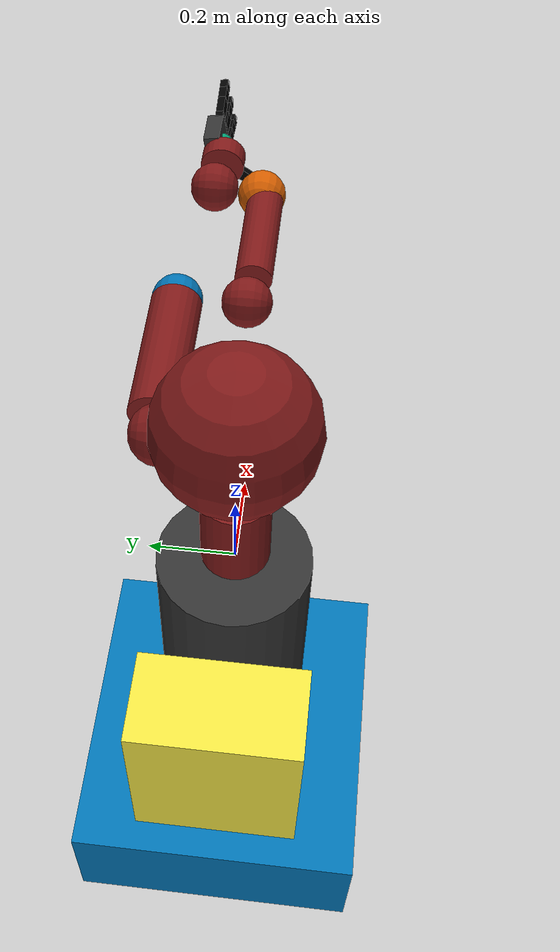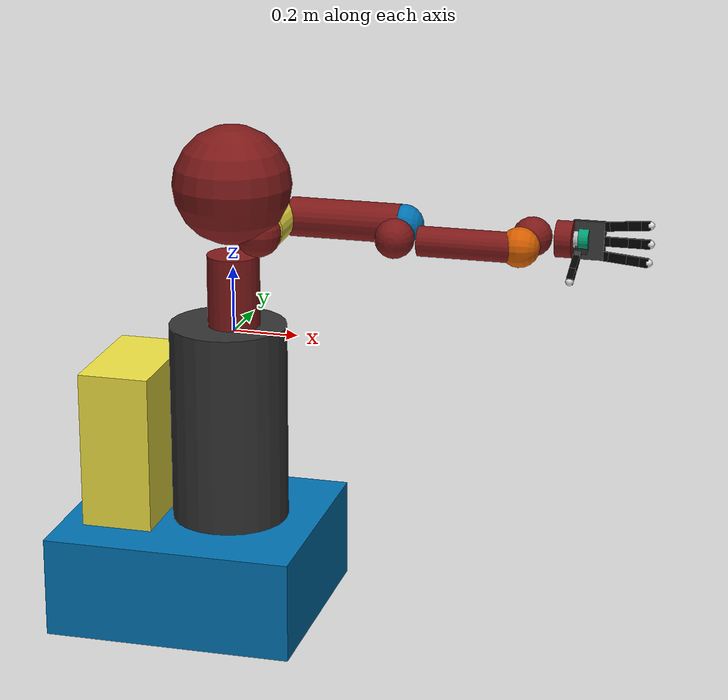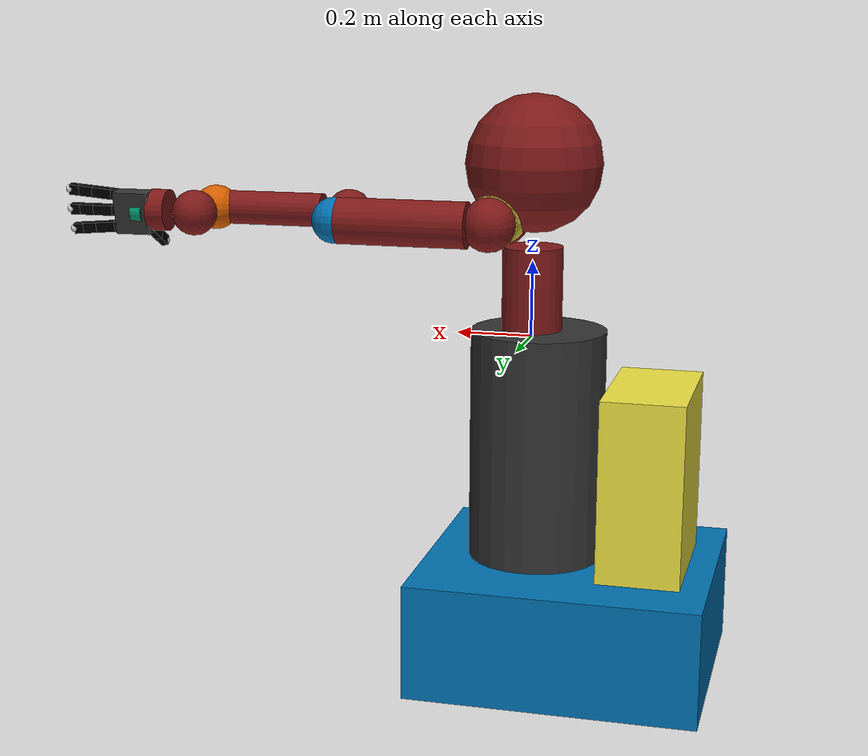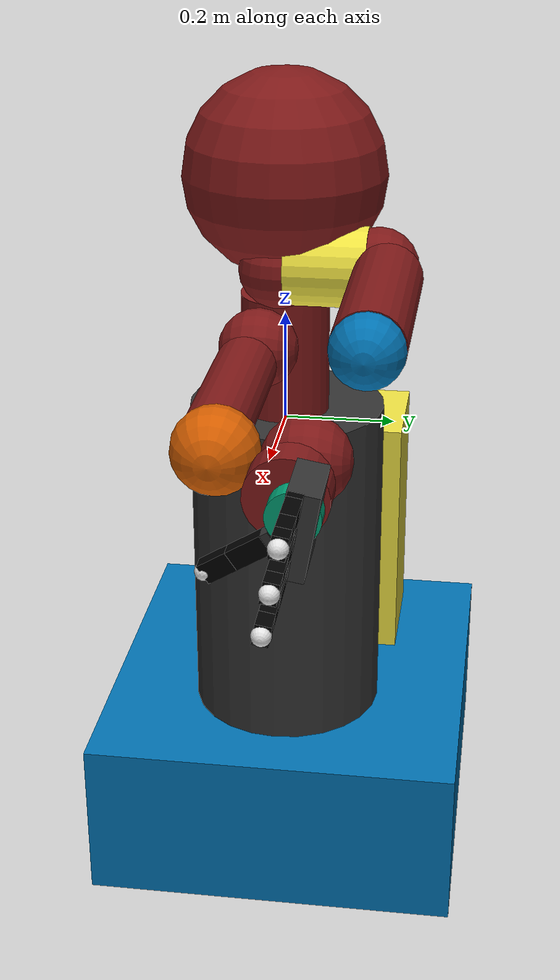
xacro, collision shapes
Our custom Xacro file. When you run the Xacro command on this file it
creates the combined URDF of Sawyer and the hand, and links them together including
the mount that we created.

<?xml version="1.0" ?>
<robot name="sawyer" xmlns:xacro="http://www.ros.org/wiki/xacro">

  <xacro:arg name="gazebo" default="false"/>
  <xacro:arg name="pedestal" default="true"/>
  <xacro:arg name="static" default="true"/>
  <xacro:arg name="electric_gripper" default="false"/>
  <xacro:arg name="allegro_hand" default="true"/>

  <!-- Sawyer Base URDF -->
  <xacro:include filename="$(find sawyer_description)/urdf/sawyer_base.urdf.xacro">
    <xacro:arg name="gazebo" value="${gazebo}"/>
    <xacro:arg name="pedestal" value="${pedestal}"/>
  </xacro:include>

  <xacro:if value="$(arg gazebo)">
  <xacro:include filename="$(find sawyer_description)/urdf/sawyer_base.gazebo.xacro">
    <xacro:arg name="static" value="${static}"/>
    <xacro:arg name="pedestal" value="${pedestal}"/>
  </xacro:include>
  </xacro:if>

  <!-- Electric Gripper End Effector -->
  <xacro:if value="$(arg electric_gripper)">
  <xacro:include filename="$(find sawyer_description)/urdf/sawyer_electric_gripper.urdf.xacro">
    <xacro:arg name="gazebo" value="${gazebo}"/>
  </xacro:include>
  </xacro:if>

  <!-- Allegro Hand End Effector -->
  <xacro:if value="$(arg allegro_hand)">
  <xacro:include filename="$(find allegro_hand_description)/allegro_hand_description_right.xacro">
    <xacro:arg name="gazebo" value="${gazebo}"/>
  </xacro:include>
  </xacro:if>

  <!-- The link that joins the end of the Sawyer to the mount -->
  <joint name="sawyer_to_mount" type="fixed">
    <parent link="right_hand"/>
    <child link="mount"/>
    <origin rpy="0 0 0" xyz="0 0 0"/>
  </joint>

<!-- The link between the mount and the hand -->
  <joint name="mount_to_hand" type="fixed">
    <parent link="mount"/>
    <child link="palm_link"/>
    <origin rpy="0 0 0" xyz="0 0 0.08"/>
  </joint>

<!-- The details of the custom mount we made, including its mass, dimensions and inertia matrix -->
  <link name="mount">
    <visual>
      <origin rpy="0 0 0" xyz="0 0 0"/>
      <geometry>
        <cylinder length="0.025" radius="0.0275"/>
      </geometry>
      <material name="silver"/>
    </visual>
    <collision>
      <origin rpy="0 0 0" xyz="0 0 0"/>
      <geometry>
        <cylinder length="0.025" radius="0.0275"/>
      </geometry>
    </collision>
    <inertial>
      <origin rpy="0 0 0" xyz="0 0 0"/>
      <mass value="0.16"/>
      <inertia ixx= "3.9e-5" ixy = "0" ixz="0" iyy="3.9e-5" iyz="0" izz="5e-5"/>
    </inertial>
  </link>

</robot>

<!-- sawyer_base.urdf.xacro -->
<robot name="sawyer" xmlns:xacro="http://www.ros.org/wiki/xacro">
  <xacro:arg name="gazebo" default="false"/>
  <xacro:arg name="pedestal" default="true"/>
  <material name="black">
    <color rgba="0 0 0 1"/>
  </material>
  <material name="darkgray">
    <color rgba=".2 .2 .2 1"/>
  </material>
  <material name="darkred">
    <color rgba=".5 .1 .1 1"/>
  </material>
  <material name="sawyer_red">
    <color rgba=".5 .1 .1 1"/>
  </material>
  <material name="sawyer_gray">
    <color rgba="0.75294 0.75294 0.75294 1"/>
  </material>
  <link name="base"/>
  <link name="torso">
    <visual>
      <origin rpy="0 0 0" xyz="0 0 0"/>
      <geometry>
        <box size="0.001 0.001 0.001"/>
      </geometry>
      <material name="darkgray">
        <color rgba=".2 .2 .2 1"/>
      </material>
    </visual>
<xacro:unless value="$(arg gazebo)">
    <inertial>
      <origin rpy="0 0 0" xyz="0.000000 0.000000 0.000000"/>
      <mass value="0.0001"/>
      <inertia ixx="1e-08" ixy="0" ixz="0" iyy="1e-08" iyz="0" izz="1e-08"/>
    </inertial>
</xacro:unless>
  </link>
<xacro:if value="$(arg pedestal)">
  <link name="pedestal">
    <visual>
      <origin rpy="1.57079632679 0 -1.57079632679" xyz="0.26 0.345 -0.91488"/>
      <geometry>
        <mesh filename="package://sawyer_description/meshes/sawyer_pv/pedestal.DAE"/>
      </geometry>
      <material name="darkgray"/>
    </visual>
    <collision>
      <origin rpy="0 0 0" xyz="-0.02 0 -0.29"/>
      <geometry>
        <cylinder length="0.62" radius="0.18"/>
      </geometry>
    </collision>
    <inertial>
      <origin rpy="0 0 0" xyz="0 0 -0.5"/>
      <mass value="60.86397744"/>
      <inertia ixx="5.0635929" ixy="0.00103417" ixz="0.80199628" iyy="6.08689388" iyz="0.00105311" izz="4.96191932"/>
    </inertial>
  </link>
  <link name="controller_box">
    <collision>
      <origin rpy="0 0 0" xyz="-0.325 0 -0.38"/>
      <geometry>
        <box size="0.22 0.4 0.53"/>
      </geometry>
    </collision>
  </link>
  <joint name="controller_box_fixed" type="fixed">
    <origin rpy="0 0 0" xyz="0.0 0.0 0.0"/>
    <parent link="base"/>
    <child link="controller_box"/>
  </joint>
  <link name="pedestal_feet">
    <collision>
      <origin rpy="0 0 0" xyz="-0.1225 0 -0.758"/>
      <geometry>
        <box size="0.77 0.7 0.31"/>
      </geometry>
    </collision>
  </link>
  <joint name="pedestal_feet_fixed" type="fixed">
    <origin rpy="0 0 0" xyz="0.0 0.0 0.0"/>
    <parent link="base"/>
    <child link="pedestal_feet"/>
  </joint>
  <joint name="pedestal_fixed" type="fixed">
    <origin rpy="0 0 0" xyz="0.0 0.0 0.0"/>
    <parent link="base"/>
    <child link="pedestal"/>
  </joint>
</xacro:if>
  <joint name="right_arm_mount" type="fixed">
    <origin rpy="0 0 0" xyz="0.0 0.0 0.0"/>
    <parent link="base"/>
    <child link="right_arm_base_link"/>
  </joint>
  <joint name="torso_t0" type="fixed">
    <origin rpy="0 0 0" xyz="0 0 0"/>
    <parent link="base"/>
    <child link="torso"/>
  </joint>
  <link name="right_arm_base_link">
    <inertial>
      <origin rpy="0 0 0" xyz="-0.0006241 -2.8025E-05 0.065404"/>
      <mass value="2.0687"/>
      <inertia ixx="0.0067599" ixy="-4.2024E-05" ixz="-6.1904E-07" iyy="0.0067877" iyz="1.5888E-05" izz="0.0074031"/>
    </inertial>
    <visual>
      <origin rpy="0 0 0" xyz="0 0 0"/>
      <geometry>
        <mesh filename="package://sawyer_description/meshes/sawyer_pv/base.DAE"/>
      </geometry>
      <material name="sawyer_red"/>
    </visual>
    <collision>
      <origin rpy="0 0 0" xyz="0 0 0.12"/>
      <geometry>
        <cylinder length="0.24" radius="0.08"/>
      </geometry>
    </collision>
  </link>
  <link name="right_l0">
    <inertial>
      <origin rpy="0 0 0" xyz="0.024366 0.010969 0.14363"/>
      <mass value="5.3213"/>
      <inertia ixx="0.053314" ixy="0.0047093" ixz="0.011734" iyy="0.057902" iyz="0.0080179" izz="0.023659"/>
    </inertial>
    <visual>
      <origin rpy="0 0 0" xyz="0 0 0"/>
      <geometry>
        <mesh filename="package://sawyer_description/meshes/sawyer_mp3/l0.DAE"/>
      </geometry>
      <material name="sawyer_red"/>
    </visual>
    <collision>
      <origin rpy="0 0 0" xyz="0.08 0 0.23"/>
      <geometry>
        <sphere radius="0.07"/>
      </geometry>
    </collision>
  </link>
  <joint name="right_j0" type="revolute">
    <origin rpy="0 0 0" xyz="0 0 0.08"/>
    <parent link="right_arm_base_link"/>
    <child link="right_l0"/>
    <axis xyz="0 0 1"/>
    <limit effort="80.0" lower="-3.0503" upper="3.0503" velocity="1.74"/>
<xacro:if value="$(arg gazebo)">
    <dynamics damping="5.0" friction="2.0"/>
</xacro:if>
  </joint>
  <link name="head">
    <inertial>
      <origin rpy="0 0 0" xyz="0.0053207 -2.6549E-05 0.1021"/>
      <mass value="1.5795"/>
      <inertia ixx="0.011833" ixy="-4.4669E-06" ixz="4.9425E-05" iyy="0.0082709" iyz="4.2124E-07" izz="0.0049661"/>
    </inertial>
    <visual>
      <origin rpy="0 0 0" xyz="0 0 0"/>
      <geometry>
        <mesh filename="package://sawyer_description/meshes/sawyer_pv/head.DAE"/>
      </geometry>
      <material name="sawyer_red"/>
    </visual>
    <collision>
      <origin rpy="0 0 0" xyz="0 0 0.08"/>
      <geometry>
        <sphere radius="0.18"/>
      </geometry>
    </collision>
  </link>
  <joint name="head_pan" type="revolute">
    <origin rpy="0 0 0" xyz="0 0 0.2965"/>
    <parent link="right_l0"/>
    <child link="head"/>
    <axis xyz="0 0 1"/>
    <limit effort="8" lower="-5.0952" upper="0.9064" velocity="1.8"/>
<xacro:if value="$(arg gazebo)">
    <dynamics damping="1.0" friction="0.5"/>
</xacro:if>
  </joint>
  <link name="right_torso_itb">
<xacro:unless value="$(arg gazebo)">
    <inertial>
      <origin rpy="0 0 0" xyz="0.000000 0.000000 0.000000"/>
      <mass value="0.0001"/>
      <inertia ixx="1e-08" ixy="0" ixz="0" iyy="1e-08" iyz="0" izz="1e-08"/>
    </inertial>
</xacro:unless>
  </link>
  <joint name="right_torso_itb" type="fixed">
    <origin rpy="0 -1.57079632679 0" xyz="-.055 0 .22"/>
    <parent link="right_l0"/>
    <child link="right_torso_itb"/>
    <axis xyz="0 0 1"/>
  </joint>
  <link name="right_l1">
    <inertial>
      <origin rpy="0 0 0" xyz="-0.0030849 -0.026811 0.092521"/>
      <mass value="4.505"/>
      <inertia ixx="0.022398" ixy="-0.00023986" ixz="-0.00029362" iyy="0.014613" iyz="-0.0060875" izz="0.017295"/>
    </inertial>
    <visual>
      <origin rpy="0 0 0" xyz="0 0 0"/>
      <geometry>
        <mesh filename="package://sawyer_description/meshes/sawyer_mp3/l1.DAE"/>
      </geometry>
      <material name="sawyer_red"/>
    </visual>
    <collision>
      <origin rpy="0 0 0" xyz="0 0 0.1225"/>
      <geometry>
        <sphere radius="0.07"/>
      </geometry>
    </collision>
  </link>
  <joint name="right_j1" type="revolute">
    <origin rpy="-1.57079632679 1.57079632679 0" xyz="0.081 0.05 0.237"/>
    <parent link="right_l0"/>
    <child link="right_l1"/>
    <axis xyz="0 0 1"/>
    <limit effort="80.0" lower="-3.8095" upper="2.2736" velocity="1.328"/>
<xacro:if value="$(arg gazebo)">
    <dynamics damping="5.0" friction="2.0"/>
</xacro:if>
  </joint>
  <link name="right_l2">
    <inertial>
      <origin rpy="0 0 0" xyz="-0.00016044 -0.014967 0.13582"/>
      <mass value="1.745"/>
      <inertia ixx="0.025506" ixy="4.4101E-06" ixz="1.4955E-05" iyy="0.0253" iyz="-0.0033204" izz="0.0034179"/>
    </inertial>
    <visual>
      <origin rpy="0 0 0" xyz="0 0 0"/>
      <geometry>
        <mesh filename="package://sawyer_description/meshes/sawyer_pv/l2.DAE"/>
      </geometry>
      <material name="sawyer_red"/>
    </visual>
    <collision>
      <origin rpy="0 0 0" xyz="0 0 0.08"/>
      <geometry>
        <cylinder length="0.34" radius="0.06"/>
      </geometry>
    </collision>
  </link>
  <joint name="right_j2" type="revolute">
    <origin rpy="1.57079632679 0 0" xyz="0 -0.14 0.1425"/>
    <parent link="right_l1"/>
    <child link="right_l2"/>
    <axis xyz="0 0 1"/>
    <limit effort="40.0" lower="-3.0426" upper="3.0426" velocity="1.957"/>
<xacro:if value="$(arg gazebo)">
    <dynamics damping="5.0" friction="2.0"/>
</xacro:if>
  </joint>
  <link name="right_l3">
    <inertial>
      <origin rpy="0 0 0" xyz="-0.0048135 -0.0281 -0.084154"/>
      <mass value="2.5097"/>
      <inertia ixx="0.01016" ixy="-9.7452E-06" ixz="0.00026624" iyy="0.0065685" iyz="0.0030316" izz="0.0069078"/>
    </inertial>
    <visual>
      <origin rpy="0 0 0" xyz="0 0 0"/>
      <geometry>
        <mesh filename="package://sawyer_description/meshes/sawyer_pv/l3.DAE"/>
      </geometry>
      <material name="sawyer_red"/>
    </visual>
    <collision>
      <origin rpy="0 0 0" xyz="0 -0.01 -0.12"/>
      <geometry>
        <sphere radius="0.06"/>
      </geometry>
    </collision>
  </link>
  <joint name="right_j3" type="revolute">
    <origin rpy="-1.57079632679 0 0" xyz="0 -0.042 0.26"/>
    <parent link="right_l2"/>
    <child link="right_l3"/>
    <axis xyz="0 0 1"/>
    <limit effort="40.0" lower="-3.0439" upper="3.0439" velocity="1.957"/>
 <xacro:if value="$(arg gazebo)">
    <dynamics damping="1.0" friction="0.5"/>
</xacro:if>
  </joint>
  <link name="right_l4">
    <inertial>
      <origin rpy="0 0 0" xyz="-0.0018844 0.0069001 0.1341"/>
      <mass value="1.1136"/>
      <inertia ixx="0.013557" ixy="1.8109E-05" ixz="0.00013523" iyy="0.013555" iyz="0.0010561" izz="0.0013658"/>
    </inertial>
    <visual>
      <origin rpy="0 0 0" xyz="0 0 0"/>
      <geometry>
        <mesh filename="package://sawyer_description/meshes/sawyer_pv/l4.DAE"/>
      </geometry>
      <material name="sawyer_red"/>
    </visual>
    <collision>
      <origin rpy="0 0 0" xyz="0 0 0.11"/>
      <geometry>
        <cylinder length="0.30" radius="0.045"/>
      </geometry>
    </collision>
  </link>
  <joint name="right_j4" type="revolute">
    <origin rpy="1.57079632679 0 0" xyz="0 -0.125 -0.1265"/>
    <parent link="right_l3"/>
    <child link="right_l4"/>
    <axis xyz="0 0 1"/>
    <limit effort="9.0" lower="-2.9761" upper="2.9761" velocity="3.485"/>
<xacro:if value="$(arg gazebo)">
    <dynamics damping="2.0" friction="1.0"/>
</xacro:if>
  </joint>
  <link name="right_arm_itb">
<xacro:unless value="$(arg gazebo)">
    <inertial>
      <origin rpy="0 0 0" xyz="0.000000 0.000000 0.000000"/>
      <mass value="0.0001"/>
      <inertia ixx="1e-08" ixy="0" ixz="0" iyy="1e-08" iyz="0" izz="1e-08"/>
    </inertial>
</xacro:unless>
  </link>
  <joint name="right_arm_itb" type="fixed">
    <origin rpy="0 -1.57079632679 0" xyz="-.055 0 .075"/>
    <parent link="right_l4"/>
    <child link="right_arm_itb"/>
    <axis xyz="0 0 1"/>
  </joint>
  <link name="right_l5">
    <inertial>
      <origin rpy="0 0 0" xyz="0.0061133 -0.023697 0.076416"/>
      <mass value="1.5625"/>
      <inertia ixx="0.0047328" ixy="0.00011526" ixz="4.6269E-05" iyy="0.0029676" iyz="-0.0011557" izz="0.0031762"/>
    </inertial>
    <visual>
      <origin rpy="0 0 0" xyz="0 0 0"/>
      <geometry>
        <mesh filename="package://sawyer_description/meshes/sawyer_pv/l5.DAE"/>
      </geometry>
      <material name="sawyer_red"/>
    </visual>
    <collision>
      <origin rpy="0 0 0" xyz="0 0 0.1"/>
      <geometry>
        <sphere radius="0.06"/>
      </geometry>
    </collision>
  </link>
  <joint name="right_j5" type="revolute">
    <origin rpy="-1.57079632679 0 0" xyz="0 0.031 0.275"/>
    <parent link="right_l4"/>
    <child link="right_l5"/>
    <axis xyz="0 0 1"/>
    <limit effort="9.0" lower="-2.9761" upper="2.9761" velocity="3.485"/>
<xacro:if value="$(arg gazebo)">
    <dynamics damping="1.0" friction="0.5"/>
</xacro:if>
  </joint>
  <link name="right_hand_camera"/>
  <joint name="right_hand_camera" type="fixed">
    <origin rpy="0 1.57079632679 0" xyz="0.039552 -0.033 0.0695"/>
    <parent link="right_l5"/>
    <child link="right_hand_camera"/>
    <axis xyz="0 0 0"/>
  </joint>
  <link name="right_wrist"/>
  <joint name="right_wrist" type="fixed">
    <origin rpy="1.57079632679 0 0" xyz="0 0 0.10541"/>
    <parent link="right_l5"/>
    <child link="right_wrist"/>
    <axis xyz="0 0 0"/>
  </joint>
  <link name="right_l6">
    <inertial>
      <origin rpy="0 0 0" xyz="-8.0726E-06 0.0085838 -0.0049566"/>
      <mass value="0.3292"/>
      <inertia ixx="0.00031105" ixy="1.4771E-06" ixz="-3.7074E-07" iyy="0.00021549" iyz="-8.4533E-06" izz="0.00035976"/>
    </inertial>
    <visual>
      <origin rpy="0 0 0" xyz="0 0 0"/>
      <geometry>
        <mesh filename="package://sawyer_description/meshes/sawyer_mp1/l6.DAE"/>
      </geometry>
      <material name="sawyer_red"/>
    </visual>
    <collision>
      <origin rpy="0 0 0" xyz="0 0.015 -0.01"/>
      <geometry>
        <cylinder length="0.05" radius="0.055"/>
      </geometry>
    </collision>
  </link>
  <joint name="right_j6" type="revolute">
    <origin rpy="-1.57079632679 -0.17453 3.1416" xyz="0 -0.11 0.1053"/>
    <parent link="right_l5"/>
    <child link="right_l6"/>
    <axis xyz="0 0 1"/>
<xacro:if value="$(arg gazebo)">
    <limit effort="9.0" lower="-3.14" upper="3.14" velocity="4.545"/>
    <dynamics damping="1.0" friction="0.5"/>
</xacro:if>
<xacro:unless value="$(arg gazebo)">
    <limit effort="9.0" lower="-4.7124" upper="4.7124" velocity="4.545"/>
</xacro:unless>
  </joint>
  <link name="right_hand">
    <collision>
      <origin rpy="0 0 0" xyz="0 0 0.02"/>
      <geometry>
        <cylinder length="0.03" radius="0.035"/>
      </geometry>
    </collision>
<xacro:if value="$(arg gazebo)">
    <inertial>
      <origin rpy="0 0 0" xyz="0 0.1 0"/>
      <mass value="0.01"/>
      <inertia ixx="0.01" ixy="0.01" ixz="0.01" iyy="0.01" iyz="0.01" izz="0.01"/>
  </inertial>
</xacro:if>
<xacro:unless value="$(arg gazebo)">
    <inertial>
      <origin rpy="0 0 0" xyz="1.0E-08 1.0E-08 1.0E-08"/>
      <mass value="1.0E-08"/>
      <inertia ixx="1.0E-08" ixy="1.0E-08" ixz="1.0E-08" iyy="1.0E-08" iyz="1.0E-08" izz="1.0E-08"/>
    </inertial>
</xacro:unless>
  </link>
  <joint name="right_hand" type="fixed">
    <origin rpy="0 0 1.570796" xyz="0 0 0.0245"/>
    <axis xyz="0 0 1"/>
    <parent link="right_l6"/>
    <child link="right_hand"/>
  </joint>
  <link name="right_l1_2">
<xacro:unless value="$(arg gazebo)">
    <inertial>
      <origin rpy="0 0 0" xyz="1.0E-08 1.0E-08 1.0E-08"/>
      <mass value="1.0E-08"/>
      <inertia ixx="1.0E-08" ixy="1.0E-08" ixz="1.0E-08" iyy="1.0E-08" iyz="1.0E-08" izz="1.0E-08"/>
    </inertial>
</xacro:unless>
    <collision>
      <origin rpy="0 0 0" xyz="0 0 0.035"/>
      <geometry>
        <cylinder length="0.14" radius="0.07"/>
      </geometry>
    </collision>
  </link>
  <joint name="right_j1_2" type="fixed">
    <origin rpy="0 0 0" xyz="0 0 0"/>
    <parent link="right_l1"/>
    <child link="right_l1_2"/>
    <axis xyz="0 0 1"/>
  </joint>
  <link name="right_l2_2">
<xacro:unless value="$(arg gazebo)">
    <inertial>
      <origin rpy="0 0 0" xyz="1.0E-08 1.0E-08 1.0E-08"/>
      <mass value="1.0E-08"/>
      <inertia ixx="1.0E-08" ixy="1.0E-08" ixz="1.0E-08" iyy="1.0E-08" iyz="1.0E-08" izz="1.0E-08"/>
    </inertial>
</xacro:unless>
    <collision>
      <origin rpy="0 0 0" xyz="0 0 0.26"/>
      <geometry>
        <sphere radius="0.06"/>
      </geometry>
    </collision>
  </link>
  <joint name="right_j2_2" type="fixed">
    <origin rpy="0 0 0" xyz="0 0 0"/>
    <parent link="right_l2"/>
    <child link="right_l2_2"/>
    <axis xyz="0 0 1"/>
  </joint>
  <link name="right_l4_2">
<xacro:unless value="$(arg gazebo)">
    <inertial>
      <origin rpy="0 0 0" xyz="1.0E-08 1.0E-08 1.0E-08"/>
      <mass value="1.0E-08"/>
      <inertia ixx="1.0E-08" ixy="1.0E-08" ixz="1.0E-08" iyy="1.0E-08" iyz="1.0E-08" izz="1.0E-08"/>
    </inertial>
</xacro:unless>
    <collision>
      <origin rpy="0 0 0" xyz="0 0.01 0.26"/>
      <geometry>
        <sphere radius="0.06"/>
      </geometry>
    </collision>
  </link>
  <joint name="right_j4_2" type="fixed">
    <origin rpy="0 0 0" xyz="0 0 0"/>
    <parent link="right_l4"/>
    <child link="right_l4_2"/>
    <axis xyz="0 0 1"/>
  </joint>
  <link name="screen">
    <visual>
      <origin rpy="0 0 0" xyz="0 0 0"/>
      <geometry>
        <box size="0.24 0.14 0.002"/>
      </geometry>
      <material name="darkgray"/>
    </visual>
    <collision>
      <origin rpy="0 0 0" xyz="0 0 0"/>
      <geometry>
        <sphere radius="0.001"/>
      </geometry>
    </collision>
<xacro:unless value="$(arg gazebo)">
    <inertial>
      <origin rpy="0 0 0" xyz="0 0 0"/>
      <mass value="0.0001"/>
      <inertia ixx="1e-08" ixy="0" ixz="0" iyy="1e-08" iyz="0" izz="1e-08"/>
    </inertial>
</xacro:unless>
  </link>
  <joint name="display_joint" type="fixed">
    <origin rpy="1.57079632679 0 1.57079632679" xyz="0.03 0.0 0.105"/>
    <parent link="head"/>
    <child link="screen"/>
  </joint>
  <link name="head_camera"/>
  <joint name="head_camera" type="fixed">
    <origin rpy="-2.1293 0 -1.57079632679" xyz="0.0228027 0 0.216572"/>
    <parent link="head"/>
    <child link="head_camera"/>
    <axis xyz="0 0 0"/>
  </joint>
</robot>

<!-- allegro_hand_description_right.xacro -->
<robot xmlns:xacro="http://www.ros.org/wiki/xacro" name="allegro_hand_right">

    <xacro:property name="DEG2RAD" value="0.01745329251"/>

    <!-- ======================== BASE PARAMS ========================= -->
    <xacro:property name="palm_link_z" value="0.095"/>

    <!-- ======================== FINGER PARAMS ======================== -->
    <xacro:property name="links_x" value="0.0196"/>
    <xacro:property name="links_y" value="0.0275"/>
    <xacro:property name="link0_z" value="0.0164"/>
    <xacro:property name="link1_z" value="0.0540"/>
    <xacro:property name="link2_z" value="0.0384"/>

    <!-- full height from joint to tip. when used,
    the radius of the finger tip sphere will be subtracted
    and one fixed link will be added for the tip. -->
    <xacro:property name="link3_z" value="0.0387"/>
    <xacro:property name="fingerTip_r" value="0.0120"/>
    <xacro:property name="offset_origin_x_const" value="0"/>
    <xacro:property name="offset_origin_y_const" value="0.0435"/>
    <xacro:property name="offset_origin_z_const" value="-0.001542"/>
    <xacro:property name="offset_origin_z_mid_const" value="0.0007"/>

    <!-- ========================= THUMB PARAMS ========================= -->
    <xacro:property name="link0_t_x" value="0.0358"/>
    <xacro:property name="link0_t_y" value="0.0340"/>
    <xacro:property name="link0_t_z" value="0.0455"/>
    <xacro:property name="link1_t_z" value="0.0177"/>
    <xacro:property name="link2_t_z" value="0.0514"/>
    <xacro:property name="link3_t_z" value="0.0543"/>

    <!-- ========================= LIMITS ========================= -->
    <xacro:property name="joint_safety_margin" value="0.1"/>
    <xacro:property name="limit_0_up" value="0.57"/>
    <xacro:property name="limit_0_low" value="-0.57"/>
    <xacro:property name="limit_1_up" value="1.71"/>
    <xacro:property name="limit_1_low" value="-0.296"/>
    <xacro:property name="limit_2_up" value="1.809"/>
    <xacro:property name="limit_2_low" value="-0.274"/>
    <xacro:property name="limit_3_up" value="1.718"/>
    <xacro:property name="limit_3_low" value=" -0.327"/>
    <xacro:property name="limit_0_t_up" value="1.496"/>
    <xacro:property name="limit_0_t_low" value="0.363"/>
    <xacro:property name="limit_1_t_up" value="1.263"/>
    <xacro:property name="limit_1_t_low" value="-0.205"/>
    <xacro:property name="limit_2_t_up" value="1.744"/>
    <xacro:property name="limit_2_t_low" value="-0.289"/>
    <xacro:property name="limit_3_t_up" value="1.819"/>
    <xacro:property name="limit_3_t_low" value="-0.262"/>

    <!-- PALM -->
    <link name="palm_link">
        <visual>
            <geometry>
                <mesh filename="package://allegro_hand_description/meshes/base_link.STL"/>
            </geometry>
            <origin rpy="0 0 0" xyz="0 0 0 "/>
            <material name="black">
                <color rgba="0.2 0.2 0.2 1"/>
            </material>
        </visual>

        <collision>
            <origin rpy="0 0 0" xyz="-0.009300 0 -${palm_link_z/2}"/>
            <geometry>
                <box size="0.0408 0.1130 ${palm_link_z}"/>
            </geometry>
        </collision>
        <inertial>
          <origin xyz="0 0 ${palm_link_z/2}" rpy="0 0 0"/>
          <mass value="0.4154"/>
          <inertia
              ixx="1e-4" ixy="0.0" ixz="0.0"
              iyy="1e-4" iyz="0.0"
              izz="1e-4"/>
        </inertial>
    </link>

    <!-- THUMB MACRO -->
    <xacro:macro name="thumb_right"
                 params="finger_num offset_origin_x offset_origin_y offset_origin_z finger_angle_r finger_angle_p finger_angle_y">

        <!-- [LINK 12] -->
        <link name="link_${finger_num*4+0}">
            <visual>
                <geometry>
                    <mesh filename="package://allegro_hand_description/meshes/link_12.0_right.STL"/>
                </geometry>
                <material name="black">
                    <color rgba=".2 .2 .2 1"/>
                </material>
                <origin rpy="${DEG2RAD} 0 0" xyz="0 0 0"/>
            </visual>

            <collision>
                <geometry>
                    <box size="${link0_t_x} ${link0_t_y} ${link0_t_z}"/>
                </geometry>
                <origin rpy="0 0 0" xyz="${-0.0358/2+0.0} ${.018/2} ${.029/2}"/>
            </collision>

            <inertial>
              <mass value="0.0176" />
              <origin xyz="0 0 0" rpy="0 0 0"/>
              <inertia ixx="1.89273333333e-5" ixy="7.16716e-06" ixz="5.35568e-06"
                       iyy="1.43008213333e-05" iyz="6.8068e-06"
                       izz="1.89273333333e-05" />
            </inertial>
        </link>

        <joint name="joint_${finger_num*4+0}.0" type="revolute">
            <axis xyz="-1 0 0"/>
            <limit effort="15" velocity="7"
                   lower="${limit_0_t_low-joint_safety_margin}"
                   upper="${limit_0_t_up-joint_safety_margin}"/>
            <parent link="palm_link"/>
            <child link="link_${finger_num*4+0}"/>
            <origin rpy="${finger_angle_r} ${finger_angle_p} ${finger_angle_y}"
                    xyz="${offset_origin_x} ${offset_origin_y} ${offset_origin_z}"/>
            <dynamics damping="3" friction="10"/>
        </joint>

        <!-- [LINK 13] -->
        <link name="link_${finger_num*4+1}">
            <visual>
                <geometry>
                    <mesh filename="package://allegro_hand_description/meshes/link_13.0.STL"/>
                </geometry>
                <material name="black">
                    <color rgba=".2 .2 .2 1"/>
                </material>
            </visual>

            <collision>
                <geometry>
                    <box size="${links_x} ${links_y} ${link1_t_z}"/>
                </geometry>
                <origin rpy="0 0 0" xyz="0 0 ${link1_t_z/2}"/>
            </collision>

            <inertial>
              <mass value="0.0119" />
              <origin xyz="0 0 0" rpy="0 0 0"/>
              <inertia ixx="4.24250866667e-06" ixy="1.032087e-06" ixz="1.603525e-06"
                       iyy="4.52362633333e-06" iyz="1.44808125e-06"
                       izz="4.24250866667e-06" />
            </inertial>
        </link>

        <joint name="joint_${finger_num*4+1}.0" type="revolute">
            <axis xyz="0 0 1"/>
            <limit effort="15" velocity="7"
                   lower="${limit_1_t_low+joint_safety_margin}"
                   upper="${limit_1_t_up-joint_safety_margin}"/>
            <parent link="link_${finger_num*4+0}"/>
            <child link="link_${finger_num*4+1}"/>
            <origin xyz="-0.027 0.005 0.0399"/>
            <dynamics damping="3" friction="5"/>
        </joint>

        <!-- [LINK 14] -->
        <link name="link_${finger_num*4+2}">
            <visual>
                <geometry>
                    <mesh filename="package://allegro_hand_description/meshes/link_14.0.STL"/>
                </geometry>
                <material name="black">
                </material>
            </visual>

            <collision>
                <geometry>
                    <box size="${links_x} ${links_y} ${link2_t_z}"/>
                </geometry>
                <origin rpy="0 0 0" xyz="0 0 ${link2_t_z/2}"/>
            </collision>

            <inertial>
              <mass value="0.038" />
              <origin xyz="0 0 0" rpy="0 0 0"/>
              <inertia ixx="4.30439933333e-05" ixy="9.57068e-06" ixz="5.1205e-06" iyy="1.44451933333e-05"
                       iyz="1.342825e-05" izz="4.30439933333e-05" />
            </inertial>
        </link>

        <joint name="joint_${finger_num*4+2}.0" type="revolute">
            <axis xyz="0 1 0"/>
            <limit effort="15" velocity="7"
                   lower="${limit_2_t_low+joint_safety_margin}"
                   upper="${limit_2_t_up-joint_safety_margin}"/>
            <parent link="link_${finger_num*4+1}"/>
            <child link="link_${finger_num*4+2}"/>
            <origin xyz="0 0 ${link1_t_z}"/>
            <dynamics damping="3" friction="10"/>
        </joint>

        <!-- [LINK 15] -->
        <link name="link_${finger_num*4+3}">
            <visual>
                <geometry>
                    <mesh filename="package://allegro_hand_description/meshes/link_15.0.STL"/>
                </geometry>
                <material name="black">
                </material>
            </visual>

            <collision>
                <geometry>
                    <box size="${links_x} ${links_y} ${link3_t_z-fingerTip_r}"/>
                </geometry>
                <origin rpy="0 0 0" xyz="0 0 ${(link3_t_z-fingerTip_r)/2}"/>
            </collision>

            <inertial>
              <mass value="0.0388" />
              <origin xyz="0 0 0" rpy="0 0 0"/>
              <inertia ixx="3.29223173333e-05" ixy="8.042076e-06" ixz="5.2283e-06"
                       iyy="1.47493026667e-5" iyz="1.1283525e-5"
                       izz="3.29223173333e-05" />
            </inertial>
        </link>

        <joint name="joint_${finger_num*4+3}.0" type="revolute">
            <axis xyz="0 1 0"/>
            <limit effort="15" velocity="7"
                   lower="${limit_3_t_low+joint_safety_margin}"
                   upper="${limit_3_t_up-joint_safety_margin}"/>
            <parent link="link_${finger_num*4+2}"/>
            <child link="link_${finger_num*4+3}"/>
            <origin xyz="0 0 ${link2_t_z}"/>
            <dynamics damping="3" friction="12"/>
        </joint>

        <!-- [FINGER TIP] -->
        <link name="link_${finger_num*4+3}_tip">
            <visual>
                <geometry>
                    <mesh filename="package://allegro_hand_description/meshes/link_15.0_tip.STL"/>
                </geometry>
                <material name="white">
                    <color rgba=".9 .9 .9 1"/>
                </material>
            </visual>

            <collision>
                <geometry>
                    <sphere radius="${fingerTip_r}"/>
                </geometry>
                <origin rpy="0 0 0" xyz="0 0 0"/>
            </collision>

            <inertial>
              <mass value="0.0168" />
              <origin xyz="0 0 0" rpy="0 0 0"/>
              <inertia ixx="9.68e-07" ixy="0" ixz="0"
                       iyy="9.68e-07" iyz="0"
                       izz="9.68e-07" />
            </inertial>
        </link>

        <joint name="joint_${finger_num*4+3}_tip" type="fixed">
            <parent link="link_${finger_num*4+3}"/>
            <child link="link_${finger_num*4+3}_tip"/>
            <origin rpy="0 0 0" xyz="0 0 ${link3_t_z-fingerTip_r}"/>
        </joint>
    </xacro:macro>
    <!-- END THUMB MACRO -->

    <!-- THREE FINGER MACRO -->
    <xacro:macro name="finger"
                 params="finger_num offset_origin_x offset_origin_y offset_origin_z finger_angle_r">

        <!-- [LINK 0, 4, 8] -->
        <link name="link_${finger_num*4+0}">
            <visual>
                <geometry>
                    <mesh filename="package://allegro_hand_description/meshes/link_0.0.STL"/>
                </geometry>
                <material name="black"/>
            </visual>

            <collision>
                <geometry>
                    <box size="${links_x} ${links_y} ${link0_z}"/>
                </geometry>
                <origin rpy="0 0 0" xyz="0 0 ${link0_z/2}"/>
            </collision>

            <inertial>
              <mass value="0.0119" />
              <origin xyz="0 0 0" rpy="0 0 0"/>
              <inertia ixx="1.01666658333e-06" ixy="0.0" ixz="0.0"
                       iyy="6.47677333333e-07" iyz="0.0"
                       izz="1.01666658333e-06" />
            </inertial>
        </link>

        <joint name="joint_${finger_num*4+0}.0" type="revolute">
            <axis xyz="0 0 1"/>
            <limit effort="15" velocity="7"
                   lower="${limit_0_low+joint_safety_margin}"
                   upper="${limit_0_up-joint_safety_margin}"/>
            <parent link="palm_link"/>
            <child link="link_${finger_num*4+0}"/>
            <origin rpy="${finger_angle_r} 0 0"
                    xyz="${offset_origin_x} ${offset_origin_y} ${offset_origin_z}"/>
            <dynamics damping="3" friction="10"/>
        </joint>

        <!-- [LINK 1, 5, 9] -->
        <link name="link_${finger_num*4+1}">
            <visual>
                <geometry>
                    <mesh filename="package://allegro_hand_description/meshes/link_1.0.STL"/>
                </geometry>
                <material name="black"/>
            </visual>

            <collision>
                <geometry>
                    <box size="${links_x} ${links_y} ${link1_z}"/>
                </geometry>
                <origin rpy="0 0 0" xyz="0 0 ${link1_z/2}"/>
            </collision>
            <inertial>
              <mass value="0.065" />
              <origin xyz="0 0 0" rpy="0 0 0"/>
              <inertia ixx="7.95654166667e-05" ixy="1.7199e-05" ixz="8.75875e-06"
                       iyy="2.47088833333e-05" iyz="2.413125e-05"
                       izz="7.95654166667e-05" />
            </inertial>
        </link>

        <joint name="joint_${finger_num*4+1}.0" type="revolute">
            <limit effort="15" velocity="7"
                   lower="${limit_1_low+joint_safety_margin}"
                   upper="${limit_1_up-joint_safety_margin}"/>
            <axis xyz="0 1 0"/>
            <parent link="link_${finger_num*4+0}"/>
            <child link="link_${finger_num*4+1}"/>
            <origin xyz="0 0 ${link0_z}"/>
            <dynamics damping="3" friction="5"/>
        </joint>

        <!-- [LINK 2, 6, 10]-->
        <link name="link_${finger_num*4+2}">
            <visual>
                <geometry>
                    <mesh filename="package://allegro_hand_description/meshes/link_2.0.STL"/>
                </geometry>
                <material name="black"/>
            </visual>

            <collision>
                <geometry>
                    <box size="${links_x} ${links_y} ${link2_z}"/>
                </geometry>
                <origin rpy="0 0 0" xyz="0 0 ${link2_z/2}"/>
            </collision>

            <inertial>
              <mass value="0.0355" />
              <origin xyz="0 0 0" rpy="0 0 0"/>
              <inertia ixx="2.63979183333e-05" ixy="6.67968e-06" ixz="4.783625e-06"
                       iyy="1.34948516667e-05" iyz="9.372e-06"
                       izz="2.63979183333e-05" />
            </inertial>
        </link>

        <joint name="joint_${finger_num*4+2}.0" type="revolute">
            <axis xyz="0 1 0"/>
            <limit effort="15" velocity="7"
                   lower="${limit_2_low+joint_safety_margin}"
                   upper="${limit_2_up-joint_safety_margin}"/>
            <parent link="link_${finger_num*4+1}"/>
            <child link="link_${finger_num*4+2}"/>
            <origin xyz="0 0 ${link1_z}"/>
            <dynamics damping="8" friction="10"/>
        </joint>

        <!-- [LINK 3, 7, 11] -->
        <link name="link_${finger_num*4+3}">
            <visual>
                <geometry>
                    <mesh filename="package://allegro_hand_description/meshes/link_3.0.STL"/>
                </geometry>
                <material name="black"/>
            </visual>

            <collision>
                <geometry>
                    <box size="${links_x} ${links_y} ${link3_z-fingerTip_r}"/>
                </geometry>
                <origin rpy="0 0 0" xyz="0 0 ${(link3_z-fingerTip_r)/2}"/>
            </collision>

            <inertial>
              <mass value="0.0096" />
              <origin xyz="0 0 0" rpy="0 0 0"/>
              <inertia ixx="4.701248e-06" ixy="1.255968e-06" ixz="1.2936e-06"
                       iyy="3.649312e-06" iyz="1.7622e-06"
                       izz="4.701248e-06" />
            </inertial>
        </link>

        <joint name="joint_${finger_num*4+3}.0" type="revolute">
            <axis xyz="0 1 0"/>
            <limit effort="15" velocity="7"
                   lower="${limit_3_low+joint_safety_margin}"
                   upper="${limit_3_up-joint_safety_margin}"/>
            <parent link="link_${finger_num*4+2}"/>
            <child link="link_${finger_num*4+3}"/>
            <origin xyz="0 0 ${link2_z}"/>
            <dynamics damping="10" friction="12"/>
        </joint>

        <!-- [FINGER TIP] -->
        <link name="link_${finger_num*4+3}_tip">
            <visual>
                <geometry>
                    <mesh filename="package://allegro_hand_description/meshes/link_3.0_tip.STL"/>
                </geometry>
                <material name="white">
                    <color rgba=".9 .9 .9 1"/>
                </material>
            </visual>

            <collision>
                <geometry>
                    <sphere radius="${fingerTip_r}"/>
                </geometry>
            </collision>

            <inertial>
              <mass value="0.0168" />
              <origin xyz="0 0 0" rpy="0 0 0"/>
              <inertia ixx="9.68e-07" ixy="0" ixz="0"
                       iyy="9.68e-07" iyz="0"
                       izz="9.68e-07" />
            </inertial>
        </link>

        <joint name="joint_${finger_num*4+3}_tip" type="fixed">
            <parent link="link_${finger_num*4+3}"/>
            <child link="link_${finger_num*4+3}_tip"/>
            <origin rpy="0 0 0" xyz="0 0 ${link3_z-fingerTip_r}"/>
        </joint>
    </xacro:macro>
    <!-- [[END]] THREE FINGER MACRO -->

    <!-- FINGERS -->
    <!-- RIGHT HAND due to which finger is number 0 -->
    <!-- for LEFT HAND switch the sign of the **offset_origin_y** and **finger_angle_r** parameters-->
    <xacro:finger
            finger_num="0"
            offset_origin_x="${offset_origin_x_const}"
            offset_origin_y="${offset_origin_y_const}"
            offset_origin_z="${offset_origin_z_const}"
            finger_angle_r="-${5.0*DEG2RAD}"
            />
    <xacro:finger
            finger_num="1"
            offset_origin_x="${offset_origin_x_const}"
            offset_origin_y="0"
            offset_origin_z="${offset_origin_z_mid_const}"
            finger_angle_r="0.0"
            />
    <xacro:finger
            finger_num="2"
            offset_origin_x="${offset_origin_x_const}"
            offset_origin_y="-${offset_origin_y_const}"
            offset_origin_z="${offset_origin_z_const}"
            finger_angle_r="${5.0*DEG2RAD}"
            />
    <!-- THUMB -->
    <xacro:thumb_right
            finger_num="3"
            offset_origin_x="-0.0182"
            offset_origin_y="0.019333"
            offset_origin_z="-0.045987"
            finger_angle_r="0"
            finger_angle_p="-${95*DEG2RAD}"
            finger_angle_y="-${90*DEG2RAD}"
            />
</robot>
